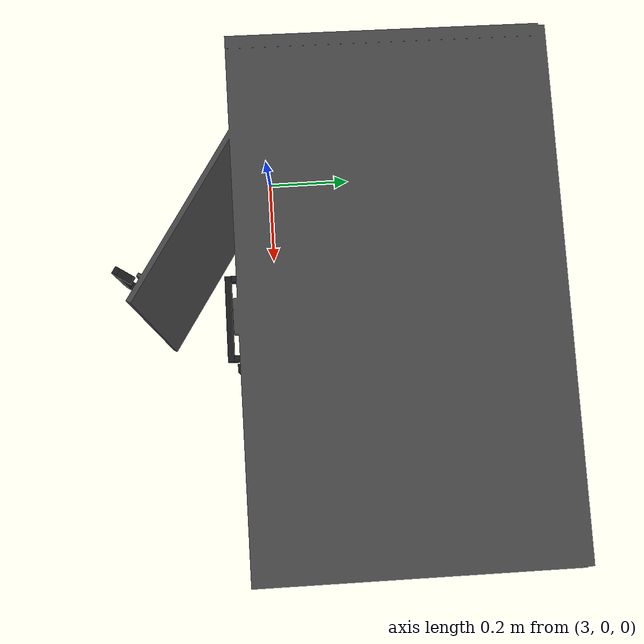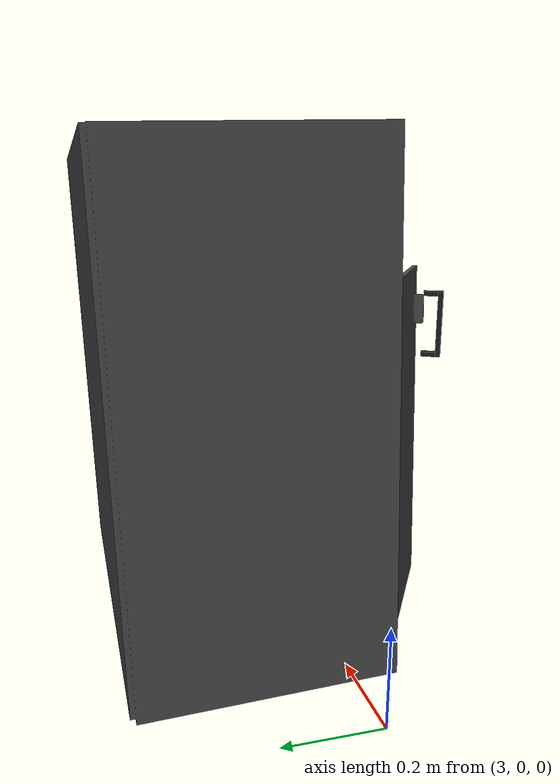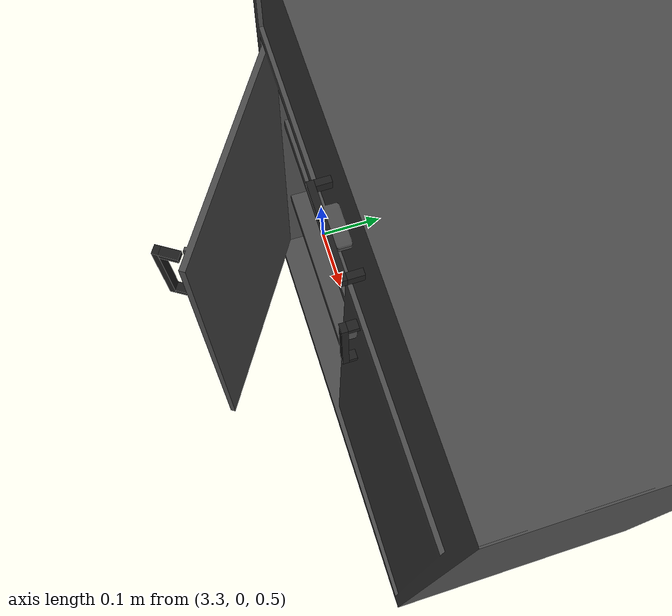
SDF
<?xml version='1.0'?>
<sdf version='1.6'>
<model name='kitchencab'>
      <link name='link_1'>
        <pose frame=''>5e-06 0 -0 1.70225 0.001141 0.005671</pose>
        <visual name='visual'>
          <pose frame=''>0 0 0 -0.165796 -0 0</pose>
          <geometry>
            <mesh>
              <uri>model://kitchencab/meshes/kitchencab.dae</uri>
              <scale>0.5 0.5 0.5</scale>
            </mesh>
          </geometry>
          <material>
            <lighting>1</lighting>
            <script>
              <name>Gazebo/DarkGrey</name>
              <uri>file://media/materials/scripts/gazebo.material</uri>
            </script>
            <shader type='pixel'/>
	    <emissive>0.05 0.05 0.05 1</emissive>
          </material>
          <transparency>0</transparency>
          <cast_shadows>1</cast_shadows>
        </visual>
        <collision name='collision'>
          <laser_retro>0</laser_retro>
          <max_contacts>10</max_contacts>
          <pose frame=''>0 0 0 -0.165796 -0 0</pose>
          <geometry>
            <mesh>
              <uri>model://kitchencab/meshes/kitchencab.dae</uri>
              <scale>0.5 0.5 0.5</scale>
            </mesh>
          </geometry>
        </collision>
      </link>
      <static>1</static>
      <allow_auto_disable>1</allow_auto_disable>
      <pose frame=''>3.86158 0.104805 0.059126 0 -0 0</pose>
      <include>
	<name>DoorHandle1</name>
	<uri>model://DoorHandle</uri>
	<pose>-0.37 -0.13 0.85 -1.57 0 -1.57</pose>
      </include>
      <joint name="handle_top_joint" type="fixed">
	<child>DoorHandle1::link_2</child>
	<parent>link_1</parent>
      </joint>
     <include>
	<name>DoorHandle2</name>
	<uri>model://DoorHandle</uri>
	<pose>-0.31 -0.13 0.6 0 0 -1.57</pose>
      </include>
      <joint name="handle_middle_joint" type="fixed">
	<child>DoorHandle2::link_2</child>
	<parent>link_1</parent>
      </joint>
     <include>
	<name>DoorHandle3</name>
	<uri>model://DoorHandle</uri>
	<pose>-0.49 -0.35 0.61 0 0 -2.14</pose>
      </include>
      <joint name="handle_middle_joint" type="fixed">
	<child>DoorHandle3::link_2</child>
	<parent>link_1</parent>
      </joint>
    </model>
</sdf>

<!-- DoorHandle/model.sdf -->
<sdf version='1.6'>
  <model name='DoorHandle'>
    <link name='link_2'>
      <pose frame=''>0.013333 0 -0 0 -0 0</pose>
      <visual name='visual'>
        <pose frame=''>0 0 0 0 -0 0</pose>
        <geometry>
          <box>
            <size>0.01 0.015 0.14</size>
          </box>
        </geometry>
        <material>
          <lighting>1</lighting>
          <script>
            <name>Gazebo/Black</name>
            <uri>file://media/materials/scripts/gazebo.material</uri>
          </script>
          <shader type='pixel'>
            <normal_map>__default__</normal_map>
          </shader>
	  <ambient>0 0 0 1</ambient>
	  <specular>0 0 0 1</specular>
	  <diffuse>0 0 0 1</diffuse>
	  <emissive>0 0 0 1</emissive>
        </material>
        <transparency>0</transparency>
        <cast_shadows>1</cast_shadows>
      </visual>
      <collision name='collision'>
        <laser_retro>0</laser_retro>
        <max_contacts>10</max_contacts>
        <pose frame=''>0 0 0 0 -0 0</pose>
        <geometry>
          <box>
            <size>0.01 0.015 0.14</size>
          </box>
        </geometry>
      </collision>
    </link>
    <link name='link_4'>
      <pose frame=''>-0.006667 0 -0.065 0 -0 0</pose>
      <visual name='visual'>
        <pose frame=''>0 0 0 0 -0 0</pose>
        <geometry>
          <box>
            <size>0.03 0.015 0.01</size>
          </box>
        </geometry>
        <material>
          <lighting>1</lighting>
          <script>
            <name>Gazebo/Black</name>
            <uri>file://media/materials/scripts/gazebo.material</uri>
          </script>
          <shader type='pixel'>
            <normal_map>__default__</normal_map>
          </shader>
	  <ambient>0 0 0 1</ambient>
	  <specular>0 0 0 1</specular>
	  <diffuse>0 0 0 1</diffuse>
	  <emissive>0 0 0 1</emissive>
        </material>
        <transparency>0</transparency>
        <cast_shadows>1</cast_shadows>
      </visual>
      <collision name='collision'>
        <laser_retro>0</laser_retro>
        <max_contacts>10</max_contacts>
        <pose frame=''>0 0 0 0 -0 0</pose>
        <geometry>
          <box>
            <size>0.03 0.015 0.01</size>
          </box>
        </geometry>
      </collision>
    </link>
    <link name='link_5'>
      <pose frame=''>-0.006667 0 0.065001 0 -0 0</pose>
      <visual name='visual'>
        <pose frame=''>0 0 0 0 -0 0</pose>
        <geometry>
          <box>
            <size>0.03 0.015 0.01</size>
          </box>
        </geometry>
        <material>
          <lighting>1</lighting>
          <script>
            <name>Gazebo/Black</name>
            <uri>file://media/materials/scripts/gazebo.material</uri>
          </script>
	  <ambient>0 0 0 1</ambient>
	  <specular>0 0 0 1</specular>
	  <diffuse>0 0 0 1</diffuse>
	  <emissive>0 0 0 1</emissive>
          <shader type='pixel'>
            <normal_map>__default__</normal_map>
          </shader>
        </material>
        <transparency>0</transparency>
        <cast_shadows>1</cast_shadows>
      </visual>
      <collision name='collision'>
        <laser_retro>0</laser_retro>
        <max_contacts>10</max_contacts>
        <pose frame=''>0 0 0 0 -0 0</pose>
        <geometry>
          <box>
            <size>0.03 0.015 0.01</size>
          </box>
        </geometry>
      </collision>
    </link>
    <joint name='link_2_JOINT_2' type='fixed'>
      <parent>link_2</parent>
      <child>link_4</child>
      <pose frame=''>0 0 0 0 -0 0</pose>
    </joint>
    <joint name='link_5_JOINT_1' type='fixed'>
      <parent>link_5</parent>
      <child>link_2</child>
      <pose frame=''>0 0 0 0 -0 0</pose>
    </joint>
    <static>1</static>
    <allow_auto_disable>1</allow_auto_disable>
  </model>
</sdf>
